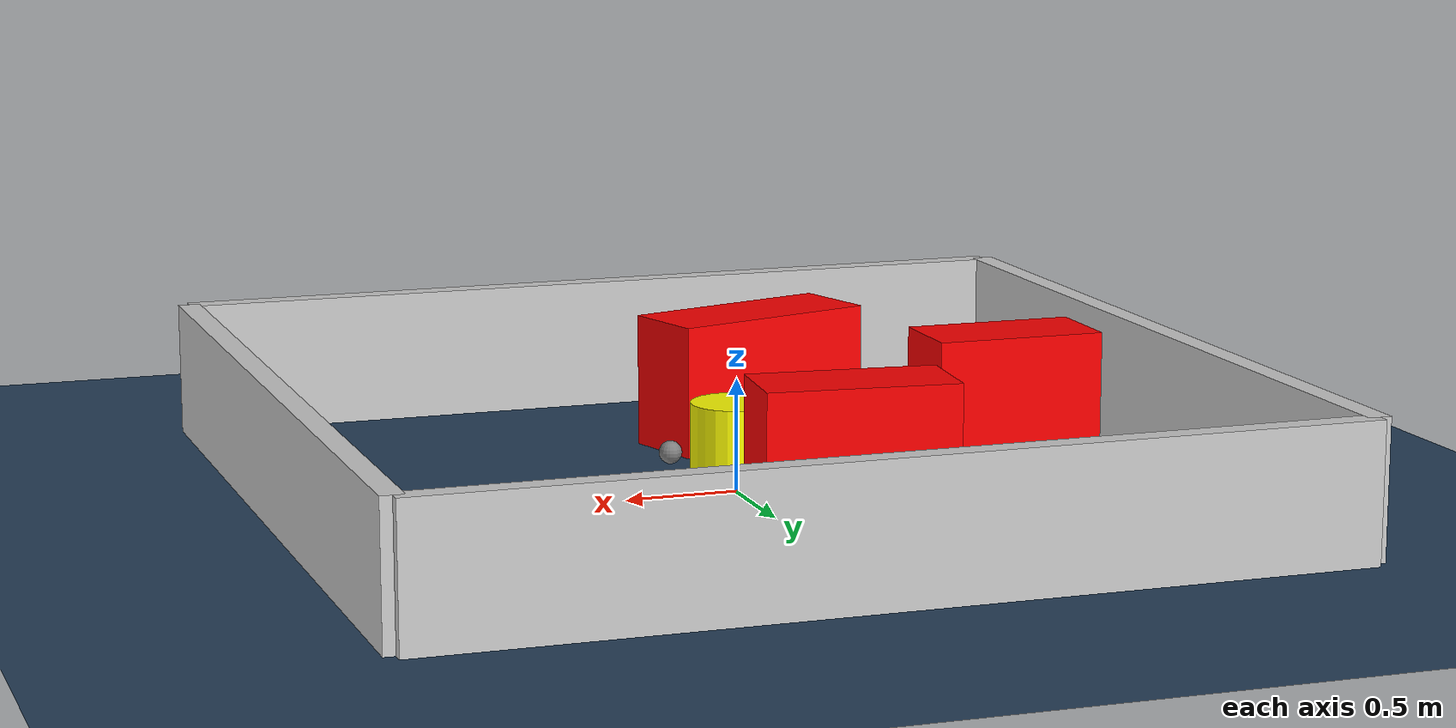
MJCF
<?xml version="1.0" ?>
<mujoco model="generated_environment">
  <option timestep="0.01" integrator="RK4" cone="elliptic"/>
  <default>
    <geom density="1"/>
  </default>
  <asset>
    <texture builtin="gradient" height="3072" rgb1="0.3 0.5 0.7" rgb2="0 0 0" type="skybox" width="512"/>
    <texture builtin="checker" height="300" mark="edge" markrgb="0.8 0.8 0.8" name="groundplane" rgb1="0.2 0.3 0.4" rgb2="0.1 0.2 0.3" type="2d" width="300"/>
    <material name="groundplane" reflectance="0.2" texrepeat="5 5" texture="groundplane" texuniform="true"/>
    <material name="robot" rgba="0.0 1.0 0.0 1"/>
  </asset>
  <worldbody>
    <light dir="0 0 -1" directional="true" pos="0 0 1.5"/>
    <geom condim="4" friction="1.0 0.005 0.001" material="groundplane" name="floor" size="0 0 0.05" type="plane"/>
    <body name="walls">
      <geom name="wall_1" condim="4" pos="-2.0 0.0 0.3" rgba="0.800000011920929 0.800000011920929 0.800000011920929 1.0" size="0.05 2.0 0.3" type="box"/>
      <geom name="wall_2" condim="4" pos="2.0 0.0 0.3" rgba="0.800000011920929 0.800000011920929 0.800000011920929 1.0" size="0.05 2.0 0.3" type="box"/>
      <geom name="wall_3" condim="4" pos="0.0 -2.0 0.3" rgba="0.800000011920929 0.800000011920929 0.800000011920929 1.0" size="2.0 0.05 0.3" type="box"/>
      <geom name="wall_4" condim="4" pos="0.0 2.0 0.3" rgba="0.800000011920929 0.800000011920929 0.800000011920929 1.0" size="2.0 0.05 0.3" type="box"/>
    </body>
    <body name="robot">
      <joint name="joint_x" type="slide" pos="0 0 0" axis="1 0 0"/>
      <joint name="joint_y" type="slide" pos="0 0 0" axis="0 1 0"/>
      <geom name="robot" type="sphere" pos="0.3 0.0 0.2" size="0.05" mass="5." friction="1.0 0.005 0.0001" condim="4" rgba="0.5 0.5 0.5 1.0"/>
      <site name="sensor_ball"/>
    </body>
    <body name="obstacle_movable_1">
      <geom name="obstacle_movable_1" condim="4" pos="0.0 0.0 0.2" euler="0 0 0.0" friction="1.0 0.005 0.001" rgba="1.0 1.0 0.0 1.0" size="0.2 0.2 0.0" type="cylinder" mass="0.1"/>
      <joint type="free"/>
    </body>
    <body name="obstacle_2_static">
      <geom name="obstacle_2_static" condim="4" pos="-0.4169002003788862 -1.0044965323324764 0.3" euler="0 0 196.65799250753722" friction="1.0 0.005 0.001" rgba="1 0 0 1" size="0.4904094076139585 0.2 0.3" type="box"/>
    </body>
    <body name="obstacle_3_static">
      <geom name="obstacle_3_static" condim="4" pos="-0.30195185691691284 0.6116370323041236 0.3" euler="0 0 174.33873373186336" friction="1.0 0.005 0.001" rgba="1 0 0 1" size="0.42020499819281365 0.2 0.3" type="box"/>
    </body>
    <body name="obstacle_4_static">
      <geom name="obstacle_4_static" condim="4" pos="-1.3353432688251412 -0.18222370006255395 0.3" euler="0 0 179.43810625931405" friction="1.0 0.005 0.001" rgba="1 0 0 1" size="0.38423580408493707 0.2 0.3" type="box"/>
    </body>
  </worldbody>
  <actuator>
    <motor name="actuator_x" joint="joint_x" gear="1" ctrlrange="-1 1"/>
    <motor name="actuator_y" joint="joint_y" gear="1" ctrlrange="-1 1"/>
  </actuator>
</mujoco>
